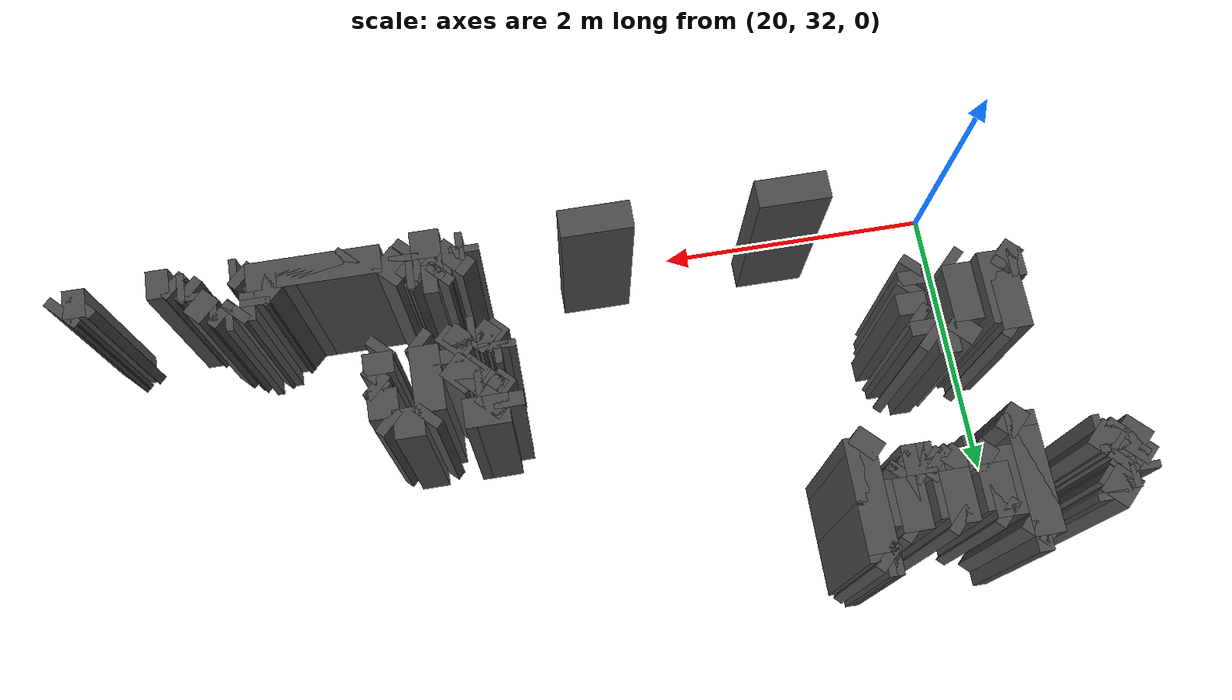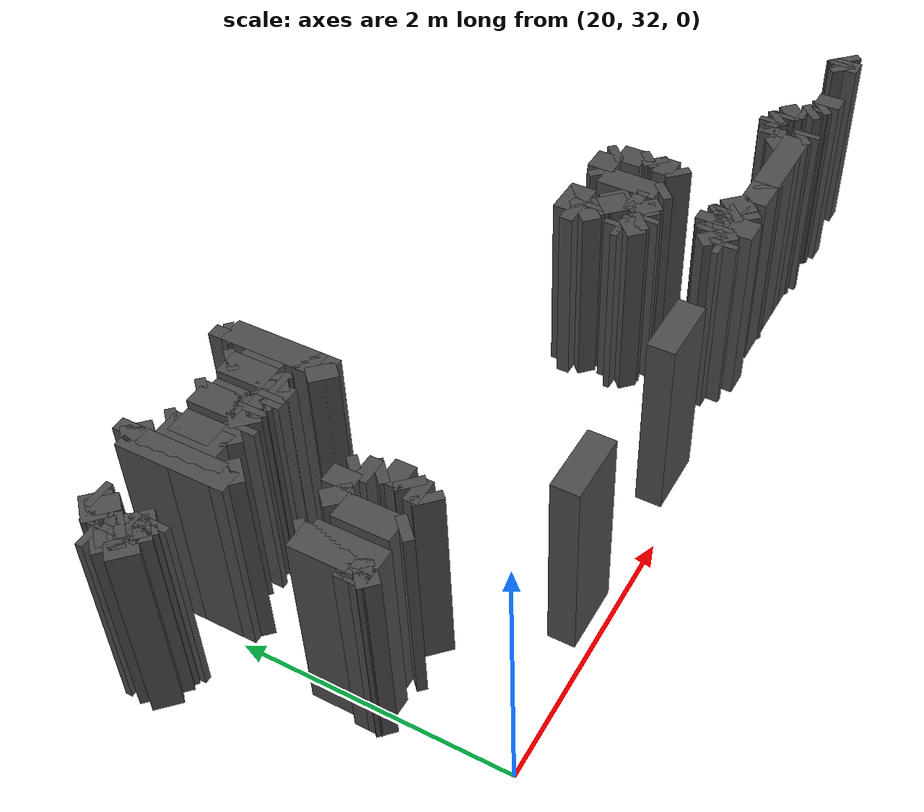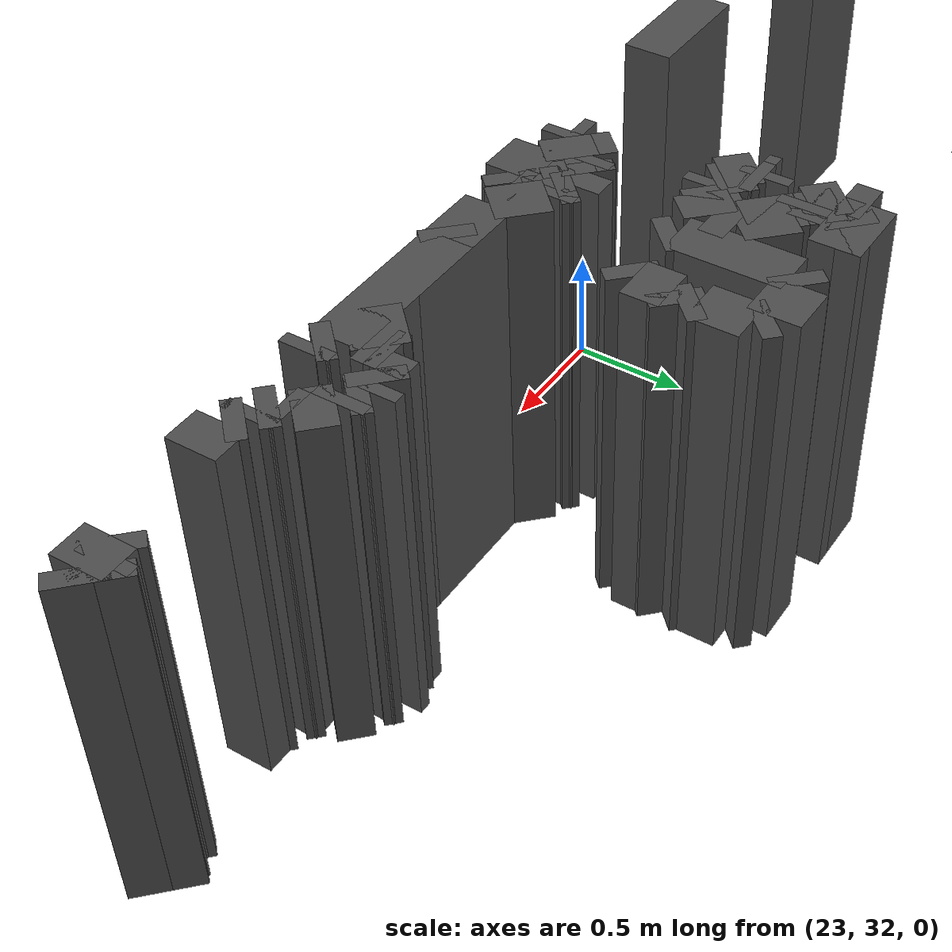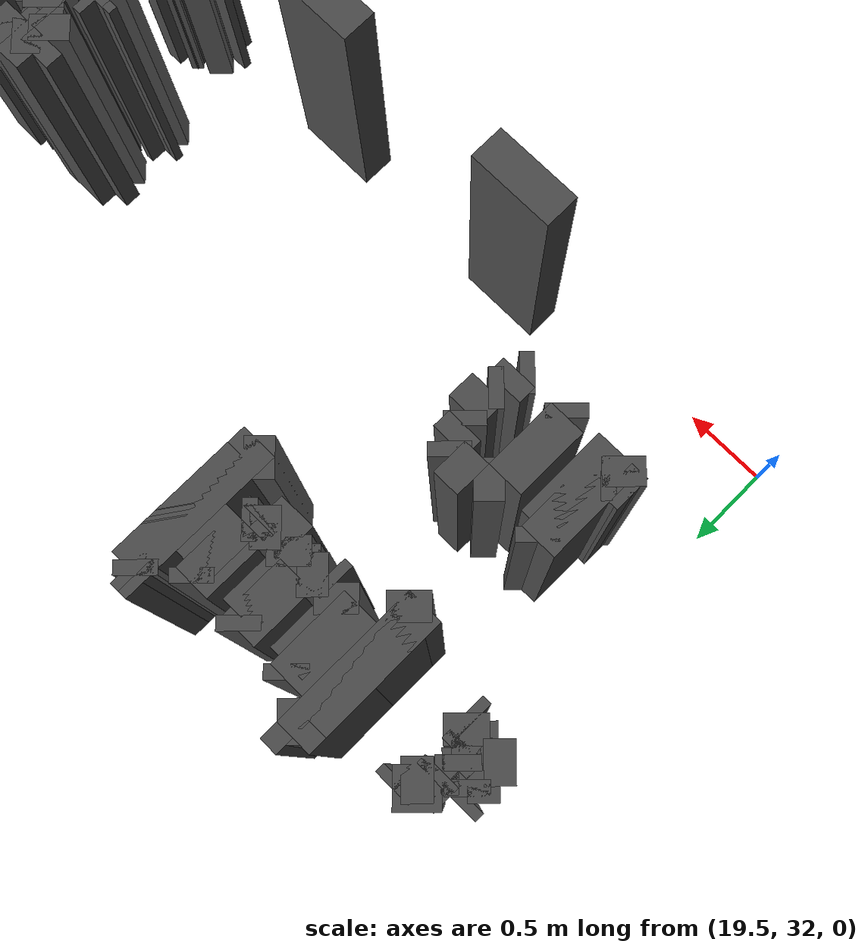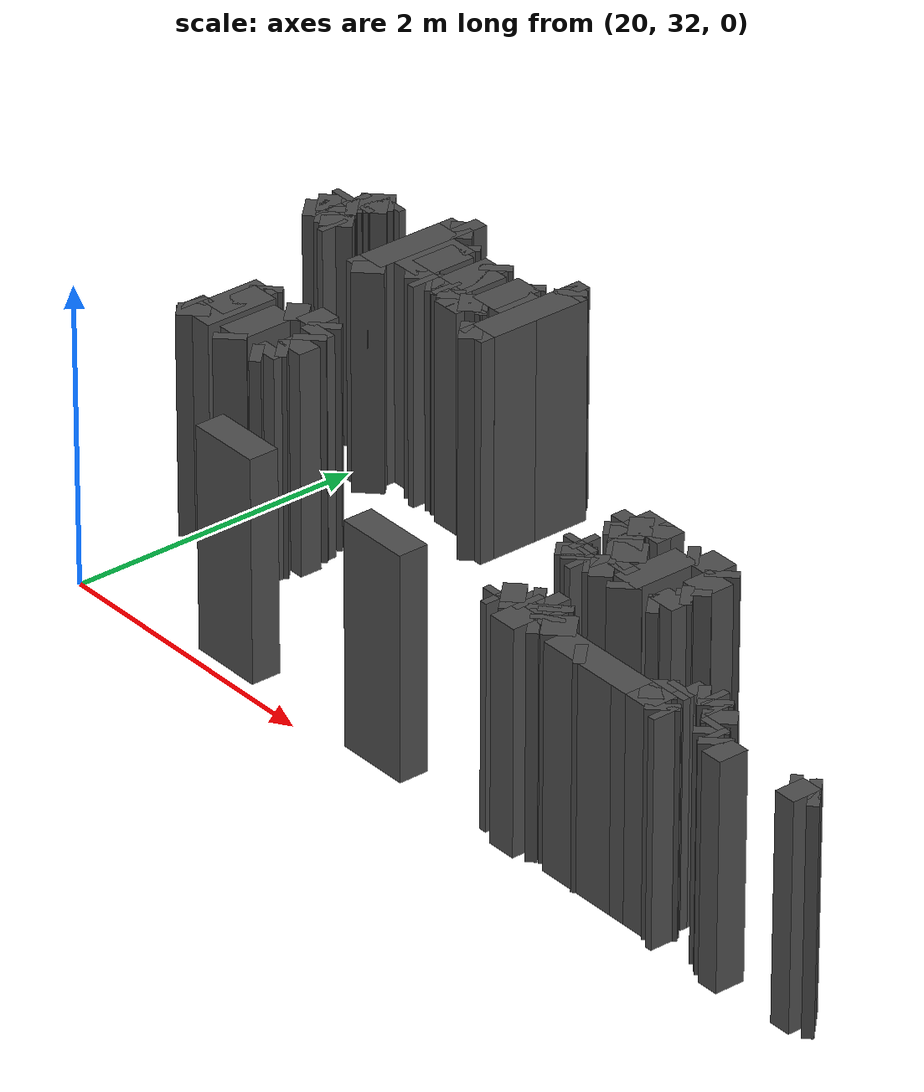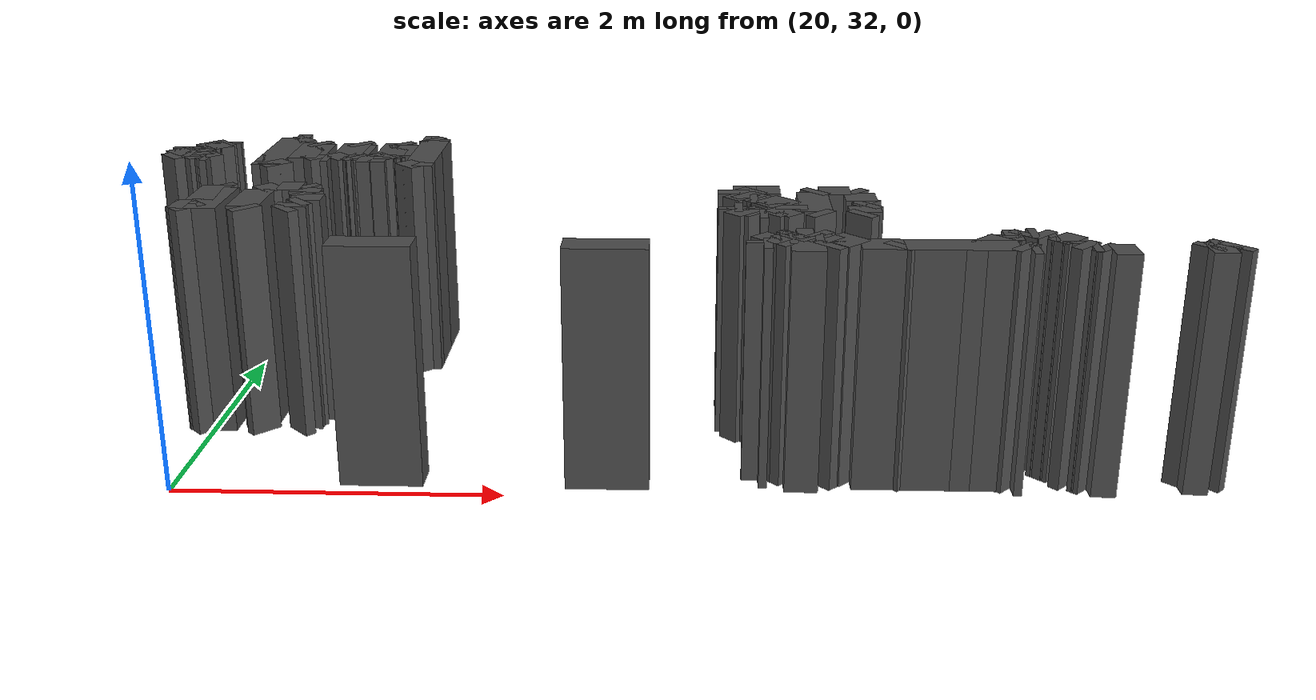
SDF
<sdf version="1.9">
 <model name="generated_walls">
  <static>true</static>
  <link name="wall_0_0">
   <pose>20.350 34.375 0.75 0 0 1.571</pose>
   <collision name="collision"><geometry><box><size>0.450 0.2 1.5</size></box></geometry></collision>
   <visual name="visual">
    <geometry><box><size>0.450 0.2 1.5</size></box></geometry>
    <material><ambient>0.3 0.3 0.3 1</ambient></material>
   </visual>
  </link>
  <link name="wall_0_1">
   <pose>20.375 34.575 0.75 0 0 -0.785</pose>
   <collision name="collision"><geometry><box><size>0.071 0.2 1.5</size></box></geometry></collision>
   <visual name="visual">
    <geometry><box><size>0.071 0.2 1.5</size></box></geometry>
    <material><ambient>0.3 0.3 0.3 1</ambient></material>
   </visual>
  </link>
  <link name="wall_0_2">
   <pose>20.400 34.400 0.75 0 0 -1.571</pose>
   <collision name="collision"><geometry><box><size>0.300 0.2 1.5</size></box></geometry></collision>
   <visual name="visual">
    <geometry><box><size>0.300 0.2 1.5</size></box></geometry>
    <material><ambient>0.3 0.3 0.3 1</ambient></material>
   </visual>
  </link>
  <link name="wall_0_3">
   <pose>20.450 34.200 0.75 0 0 -0.785</pose>
   <collision name="collision"><geometry><box><size>0.141 0.2 1.5</size></box></geometry></collision>
   <visual name="visual">
    <geometry><box><size>0.141 0.2 1.5</size></box></geometry>
    <material><ambient>0.3 0.3 0.3 1</ambient></material>
   </visual>
  </link>
  <link name="wall_0_4">
   <pose>20.525 34.150 0.75 0 0 0.000</pose>
   <collision name="collision"><geometry><box><size>0.050 0.2 1.5</size></box></geometry></collision>
   <visual name="visual">
    <geometry><box><size>0.050 0.2 1.5</size></box></geometry>
    <material><ambient>0.3 0.3 0.3 1</ambient></material>
   </visual>
  </link>
  <link name="wall_0_5">
   <pose>20.600 34.200 0.75 0 0 0.785</pose>
   <collision name="collision"><geometry><box><size>0.141 0.2 1.5</size></box></geometry></collision>
   <visual name="visual">
    <geometry><box><size>0.141 0.2 1.5</size></box></geometry>
    <material><ambient>0.3 0.3 0.3 1</ambient></material>
   </visual>
  </link>
  <link name="wall_0_6">
   <pose>20.650 34.425 0.75 0 0 1.571</pose>
   <collision name="collision"><geometry><box><size>0.350 0.2 1.5</size></box></geometry></collision>
   <visual name="visual">
    <geometry><box><size>0.350 0.2 1.5</size></box></geometry>
    <material><ambient>0.3 0.3 0.3 1</ambient></material>
   </visual>
  </link>
  <link name="wall_0_7">
   <pose>20.675 34.575 0.75 0 0 -0.785</pose>
   <collision name="collision"><geometry><box><size>0.071 0.2 1.5</size></box></geometry></collision>
   <visual name="visual">
    <geometry><box><size>0.071 0.2 1.5</size></box></geometry>
    <material><ambient>0.3 0.3 0.3 1</ambient></material>
   </visual>
  </link>
  <link name="wall_0_8">
   <pose>20.700 34.400 0.75 0 0 -1.571</pose>
   <collision name="collision"><geometry><box><size>0.300 0.2 1.5</size></box></geometry></collision>
   <visual name="visual">
    <geometry><box><size>0.300 0.2 1.5</size></box></geometry>
    <material><ambient>0.3 0.3 0.3 1</ambient></material>
   </visual>
  </link>
  <link name="wall_0_9">
   <pose>20.750 34.200 0.75 0 0 -0.785</pose>
   <collision name="collision"><geometry><box><size>0.141 0.2 1.5</size></box></geometry></collision>
   <visual name="visual">
    <geometry><box><size>0.141 0.2 1.5</size></box></geometry>
    <material><ambient>0.3 0.3 0.3 1</ambient></material>
   </visual>
  </link>
  <link name="wall_0_10">
   <pose>20.825 34.150 0.75 0 0 0.000</pose>
   <collision name="collision"><geometry><box><size>0.050 0.2 1.5</size></box></geometry></collision>
   <visual name="visual">
    <geometry><box><size>0.050 0.2 1.5</size></box></geometry>
    <material><ambient>0.3 0.3 0.3 1</ambient></material>
   </visual>
  </link>
  <link name="wall_0_11">
   <pose>20.900 34.200 0.75 0 0 0.785</pose>
   <collision name="collision"><geometry><box><size>0.141 0.2 1.5</size></box></geometry></collision>
   <visual name="visual">
    <geometry><box><size>0.141 0.2 1.5</size></box></geometry>
    <material><ambient>0.3 0.3 0.3 1</ambient></material>
   </visual>
  </link>
  <link name="wall_0_12">
   <pose>20.950 34.425 0.75 0 0 1.571</pose>
   <collision name="collision"><geometry><box><size>0.350 0.2 1.5</size></box></geometry></collision>
   <visual name="visual">
    <geometry><box><size>0.350 0.2 1.5</size></box></geometry>
    <material><ambient>0.3 0.3 0.3 1</ambient></material>
   </visual>
  </link>
  <link name="wall_0_13">
   <pose>20.975 34.575 0.75 0 0 -0.785</pose>
   <collision name="collision"><geometry><box><size>0.071 0.2 1.5</size></box></geometry></collision>
   <visual name="visual">
    <geometry><box><size>0.071 0.2 1.5</size></box></geometry>
    <material><ambient>0.3 0.3 0.3 1</ambient></material>
   </visual>
  </link>
  <link name="wall_0_14">
   <pose>21.000 34.400 0.75 0 0 -1.571</pose>
   <collision name="collision"><geometry><box><size>0.300 0.2 1.5</size></box></geometry></collision>
   <visual name="visual">
    <geometry><box><size>0.300 0.2 1.5</size></box></geometry>
    <material><ambient>0.3 0.3 0.3 1</ambient></material>
   </visual>
  </link>
  <link name="wall_0_15">
   <pose>20.975 34.225 0.75 0 0 -2.356</pose>
   <collision name="collision"><geometry><box><size>0.071 0.2 1.5</size></box></geometry></collision>
   <visual name="visual">
    <geometry><box><size>0.071 0.2 1.5</size></box></geometry>
    <material><ambient>0.3 0.3 0.3 1</ambient></material>
   </visual>
  </link>
  <link name="wall_0_16">
   <pose>20.950 34.175 0.75 0 0 -1.571</pose>
   <collision name="collision"><geometry><box><size>0.050 0.2 1.5</size></box></geometry></collision>
   <visual name="visual">
    <geometry><box><size>0.050 0.2 1.5</size></box></geometry>
    <material><ambient>0.3 0.3 0.3 1</ambient></material>
   </visual>
  </link>
  <link name="wall_0_17">
   <pose>20.850 34.150 0.75 0 0 3.142</pose>
   <collision name="collision"><geometry><box><size>0.200 0.2 1.5</size></box></geometry></collision>
   <visual name="visual">
    <geometry><box><size>0.200 0.2 1.5</size></box></geometry>
    <material><ambient>0.3 0.3 0.3 1</ambient></material>
   </visual>
  </link>
  <link name="wall_0_18">
   <pose>20.725 34.175 0.75 0 0 2.356</pose>
   <collision name="collision"><geometry><box><size>0.071 0.2 1.5</size></box></geometry></collision>
   <visual name="visual">
    <geometry><box><size>0.071 0.2 1.5</size></box></geometry>
    <material><ambient>0.3 0.3 0.3 1</ambient></material>
   </visual>
  </link>
  <link name="wall_0_19">
   <pose>20.675 34.200 0.75 0 0 3.142</pose>
   <collision name="collision"><geometry><box><size>0.050 0.2 1.5</size></box></geometry></collision>
   <visual name="visual">
    <geometry><box><size>0.050 0.2 1.5</size></box></geometry>
    <material><ambient>0.3 0.3 0.3 1</ambient></material>
   </visual>
  </link>
  <link name="wall_0_20">
   <pose>20.625 34.175 0.75 0 0 -2.356</pose>
   <collision name="collision"><geometry><box><size>0.071 0.2 1.5</size></box></geometry></collision>
   <visual name="visual">
    <geometry><box><size>0.071 0.2 1.5</size></box></geometry>
    <material><ambient>0.3 0.3 0.3 1</ambient></material>
   </visual>
  </link>
  <link name="wall_1_2">
   <pose>19.450 34.300 0.75 0 0 0.785</pose>
   <collision name="collision"><geometry><box><size>0.141 0.2 1.5</size></box></geometry></collision>
   <visual name="visual">
    <geometry><box><size>0.141 0.2 1.5</size></box></geometry>
    <material><ambient>0.3 0.3 0.3 1</ambient></material>
   </visual>
  </link>
  <link name="wall_1_3">
   <pose>19.475 34.375 0.75 0 0 2.356</pose>
   <collision name="collision"><geometry><box><size>0.071 0.2 1.5</size></box></geometry></collision>
   <visual name="visual">
    <geometry><box><size>0.071 0.2 1.5</size></box></geometry>
    <material><ambient>0.3 0.3 0.3 1</ambient></material>
   </visual>
  </link>
  <link name="wall_1_4">
   <pose>19.450 34.425 0.75 0 0 1.571</pose>
   <collision name="collision"><geometry><box><size>0.050 0.2 1.5</size></box></geometry></collision>
   <visual name="visual">
    <geometry><box><size>0.050 0.2 1.5</size></box></geometry>
    <material><ambient>0.3 0.3 0.3 1</ambient></material>
   </visual>
  </link>
  <link name="wall_1_8">
   <pose>19.525 34.450 0.75 0 0 0.000</pose>
   <collision name="collision"><geometry><box><size>0.050 0.2 1.5</size></box></geometry></collision>
   <visual name="visual">
    <geometry><box><size>0.050 0.2 1.5</size></box></geometry>
    <material><ambient>0.3 0.3 0.3 1</ambient></material>
   </visual>
  </link>
  <link name="wall_1_9">
   <pose>19.625 34.525 0.75 0 0 0.785</pose>
   <collision name="collision"><geometry><box><size>0.212 0.2 1.5</size></box></geometry></collision>
   <visual name="visual">
    <geometry><box><size>0.212 0.2 1.5</size></box></geometry>
    <material><ambient>0.3 0.3 0.3 1</ambient></material>
   </visual>
  </link>
  <link name="wall_1_10">
   <pose>19.700 34.575 0.75 0 0 -1.571</pose>
   <collision name="collision"><geometry><box><size>0.050 0.2 1.5</size></box></geometry></collision>
   <visual name="visual">
    <geometry><box><size>0.050 0.2 1.5</size></box></geometry>
    <material><ambient>0.3 0.3 0.3 1</ambient></material>
   </visual>
  </link>
  <link name="wall_1_11">
   <pose>19.650 34.500 0.75 0 0 -2.356</pose>
   <collision name="collision"><geometry><box><size>0.141 0.2 1.5</size></box></geometry></collision>
   <visual name="visual">
    <geometry><box><size>0.141 0.2 1.5</size></box></geometry>
    <material><ambient>0.3 0.3 0.3 1</ambient></material>
   </visual>
  </link>
  <link name="wall_1_12">
   <pose>19.600 34.425 0.75 0 0 -1.571</pose>
   <collision name="collision"><geometry><box><size>0.050 0.2 1.5</size></box></geometry></collision>
   <visual name="visual">
    <geometry><box><size>0.050 0.2 1.5</size></box></geometry>
    <material><ambient>0.3 0.3 0.3 1</ambient></material>
   </visual>
  </link>
  <link name="wall_1_13">
   <pose>19.575 34.375 0.75 0 0 -2.356</pose>
   <collision name="collision"><geometry><box><size>0.071 0.2 1.5</size></box></geometry></collision>
   <visual name="visual">
    <geometry><box><size>0.071 0.2 1.5</size></box></geometry>
    <material><ambient>0.3 0.3 0.3 1</ambient></material>
   </visual>
  </link>
  <link name="wall_1_14">
   <pose>19.575 34.325 0.75 0 0 -0.785</pose>
   <collision name="collision"><geometry><box><size>0.071 0.2 1.5</size></box></geometry></collision>
   <visual name="visual">
    <geometry><box><size>0.071 0.2 1.5</size></box></geometry>
    <material><ambient>0.3 0.3 0.3 1</ambient></material>
   </visual>
  </link>
  <link name="wall_1_15">
   <pose>19.600 34.275 0.75 0 0 -1.571</pose>
   <collision name="collision"><geometry><box><size>0.050 0.2 1.5</size></box></geometry></collision>
   <visual name="visual">
    <geometry><box><size>0.050 0.2 1.5</size></box></geometry>
    <material><ambient>0.3 0.3 0.3 1</ambient></material>
   </visual>
  </link>
  <link name="wall_1_16">
   <pose>19.650 34.200 0.75 0 0 -0.785</pose>
   <collision name="collision"><geometry><box><size>0.141 0.2 1.5</size></box></geometry></collision>
   <visual name="visual">
    <geometry><box><size>0.141 0.2 1.5</size></box></geometry>
    <material><ambient>0.3 0.3 0.3 1</ambient></material>
   </visual>
  </link>
  <link name="wall_1_17">
   <pose>19.675 34.150 0.75 0 0 3.142</pose>
   <collision name="collision"><geometry><box><size>0.050 0.2 1.5</size></box></geometry></collision>
   <visual name="visual">
    <geometry><box><size>0.050 0.2 1.5</size></box></geometry>
    <material><ambient>0.3 0.3 0.3 1</ambient></material>
   </visual>
  </link>
  <link name="wall_1_18">
   <pose>19.600 34.200 0.75 0 0 2.356</pose>
   <collision name="collision"><geometry><box><size>0.141 0.2 1.5</size></box></geometry></collision>
   <visual name="visual">
    <geometry><box><size>0.141 0.2 1.5</size></box></geometry>
    <material><ambient>0.3 0.3 0.3 1</ambient></material>
   </visual>
  </link>
  <link name="wall_1_19">
   <pose>19.525 34.250 0.75 0 0 3.142</pose>
   <collision name="collision"><geometry><box><size>0.050 0.2 1.5</size></box></geometry></collision>
   <visual name="visual">
    <geometry><box><size>0.050 0.2 1.5</size></box></geometry>
    <material><ambient>0.3 0.3 0.3 1</ambient></material>
   </visual>
  </link>
  <link name="wall_1_20">
   <pose>19.450 34.200 0.75 0 0 -2.356</pose>
   <collision name="collision"><geometry><box><size>0.141 0.2 1.5</size></box></geometry></collision>
   <visual name="visual">
    <geometry><box><size>0.141 0.2 1.5</size></box></geometry>
    <material><ambient>0.3 0.3 0.3 1</ambient></material>
   </visual>
  </link>
  <link name="wall_2_0">
   <pose>21.150 34.000 0.75 0 0 0.785</pose>
   <collision name="collision"><geometry><box><size>0.141 0.2 1.5</size></box></geometry></collision>
   <visual name="visual">
    <geometry><box><size>0.141 0.2 1.5</size></box></geometry>
    <material><ambient>0.3 0.3 0.3 1</ambient></material>
   </visual>
  </link>
  <link name="wall_2_1">
   <pose>21.200 34.375 0.75 0 0 1.571</pose>
   <collision name="collision"><geometry><box><size>0.650 0.2 1.5</size></box></geometry></collision>
   <visual name="visual">
    <geometry><box><size>0.650 0.2 1.5</size></box></geometry>
    <material><ambient>0.3 0.3 0.3 1</ambient></material>
   </visual>
  </link>
  <link name="wall_2_2">
   <pose>21.175 34.725 0.75 0 0 2.356</pose>
   <collision name="collision"><geometry><box><size>0.071 0.2 1.5</size></box></geometry></collision>
   <visual name="visual">
    <geometry><box><size>0.071 0.2 1.5</size></box></geometry>
    <material><ambient>0.3 0.3 0.3 1</ambient></material>
   </visual>
  </link>
  <link name="wall_2_3">
   <pose>21.125 34.750 0.75 0 0 3.142</pose>
   <collision name="collision"><geometry><box><size>0.050 0.2 1.5</size></box></geometry></collision>
   <visual name="visual">
    <geometry><box><size>0.050 0.2 1.5</size></box></geometry>
    <material><ambient>0.3 0.3 0.3 1</ambient></material>
   </visual>
  </link>
  <link name="wall_2_4">
   <pose>21.150 34.750 0.75 0 0 0.000</pose>
   <collision name="collision"><geometry><box><size>0.100 0.2 1.5</size></box></geometry></collision>
   <visual name="visual">
    <geometry><box><size>0.100 0.2 1.5</size></box></geometry>
    <material><ambient>0.3 0.3 0.3 1</ambient></material>
   </visual>
  </link>
  <link name="wall_2_5">
   <pose>21.200 34.350 0.75 0 0 -1.571</pose>
   <collision name="collision"><geometry><box><size>0.800 0.2 1.5</size></box></geometry></collision>
   <visual name="visual">
    <geometry><box><size>0.800 0.2 1.5</size></box></geometry>
    <material><ambient>0.3 0.3 0.3 1</ambient></material>
   </visual>
  </link>
  <link name="wall_3_0">
   <pose>20.150 34.350 0.75 0 0 1.571</pose>
   <collision name="collision"><geometry><box><size>0.800 0.2 1.5</size></box></geometry></collision>
   <visual name="visual">
    <geometry><box><size>0.800 0.2 1.5</size></box></geometry>
    <material><ambient>0.3 0.3 0.3 1</ambient></material>
   </visual>
  </link>
  <link name="wall_3_1">
   <pose>20.200 34.750 0.75 0 0 0.000</pose>
   <collision name="collision"><geometry><box><size>0.100 0.2 1.5</size></box></geometry></collision>
   <visual name="visual">
    <geometry><box><size>0.100 0.2 1.5</size></box></geometry>
    <material><ambient>0.3 0.3 0.3 1</ambient></material>
   </visual>
  </link>
  <link name="wall_3_2">
   <pose>20.200 34.700 0.75 0 0 -2.356</pose>
   <collision name="collision"><geometry><box><size>0.141 0.2 1.5</size></box></geometry></collision>
   <visual name="visual">
    <geometry><box><size>0.141 0.2 1.5</size></box></geometry>
    <material><ambient>0.3 0.3 0.3 1</ambient></material>
   </visual>
  </link>
  <link name="wall_3_3">
   <pose>20.150 34.350 0.75 0 0 -1.571</pose>
   <collision name="collision"><geometry><box><size>0.600 0.2 1.5</size></box></geometry></collision>
   <visual name="visual">
    <geometry><box><size>0.600 0.2 1.5</size></box></geometry>
    <material><ambient>0.3 0.3 0.3 1</ambient></material>
   </visual>
  </link>
  <link name="wall_3_4">
   <pose>20.200 34.000 0.75 0 0 -0.785</pose>
   <collision name="collision"><geometry><box><size>0.141 0.2 1.5</size></box></geometry></collision>
   <visual name="visual">
    <geometry><box><size>0.141 0.2 1.5</size></box></geometry>
    <material><ambient>0.3 0.3 0.3 1</ambient></material>
   </visual>
  </link>
  <link name="wall_13_0">
   <pose>23.875 32.875 0.75 0 0 2.356</pose>
   <collision name="collision"><geometry><box><size>0.071 0.2 1.5</size></box></geometry></collision>
   <visual name="visual">
    <geometry><box><size>0.071 0.2 1.5</size></box></geometry>
    <material><ambient>0.3 0.3 0.3 1</ambient></material>
   </visual>
  </link>
  <link name="wall_13_1">
   <pose>23.850 33.125 0.75 0 0 1.571</pose>
   <collision name="collision"><geometry><box><size>0.450 0.2 1.5</size></box></geometry></collision>
   <visual name="visual">
    <geometry><box><size>0.450 0.2 1.5</size></box></geometry>
    <material><ambient>0.3 0.3 0.3 1</ambient></material>
   </visual>
  </link>
  <link name="wall_13_2">
   <pose>23.875 33.375 0.75 0 0 0.785</pose>
   <collision name="collision"><geometry><box><size>0.071 0.2 1.5</size></box></geometry></collision>
   <visual name="visual">
    <geometry><box><size>0.071 0.2 1.5</size></box></geometry>
    <material><ambient>0.3 0.3 0.3 1</ambient></material>
   </visual>
  </link>
  <link name="wall_13_3">
   <pose>24.000 33.400 0.75 0 0 0.000</pose>
   <collision name="collision"><geometry><box><size>0.200 0.2 1.5</size></box></geometry></collision>
   <visual name="visual">
    <geometry><box><size>0.200 0.2 1.5</size></box></geometry>
    <material><ambient>0.3 0.3 0.3 1</ambient></material>
   </visual>
  </link>
  <link name="wall_13_4">
   <pose>24.125 33.375 0.75 0 0 -0.785</pose>
   <collision name="collision"><geometry><box><size>0.071 0.2 1.5</size></box></geometry></collision>
   <visual name="visual">
    <geometry><box><size>0.071 0.2 1.5</size></box></geometry>
    <material><ambient>0.3 0.3 0.3 1</ambient></material>
   </visual>
  </link>
  <link name="wall_13_5">
   <pose>24.150 33.250 0.75 0 0 -1.571</pose>
   <collision name="collision"><geometry><box><size>0.200 0.2 1.5</size></box></geometry></collision>
   <visual name="visual">
    <geometry><box><size>0.200 0.2 1.5</size></box></geometry>
    <material><ambient>0.3 0.3 0.3 1</ambient></material>
   </visual>
  </link>
  <link name="wall_13_6">
   <pose>24.175 33.125 0.75 0 0 -0.785</pose>
   <collision name="collision"><geometry><box><size>0.071 0.2 1.5</size></box></geometry></collision>
   <visual name="visual">
    <geometry><box><size>0.071 0.2 1.5</size></box></geometry>
    <material><ambient>0.3 0.3 0.3 1</ambient></material>
   </visual>
  </link>
  <link name="wall_13_7">
   <pose>24.175 33.075 0.75 0 0 -2.356</pose>
   <collision name="collision"><geometry><box><size>0.071 0.2 1.5</size></box></geometry></collision>
   <visual name="visual">
    <geometry><box><size>0.071 0.2 1.5</size></box></geometry>
    <material><ambient>0.3 0.3 0.3 1</ambient></material>
   </visual>
  </link>
  <link name="wall_13_8">
   <pose>24.150 32.975 0.75 0 0 -1.571</pose>
   <collision name="collision"><geometry><box><size>0.150 0.2 1.5</size></box></geometry></collision>
   <visual name="visual">
    <geometry><box><size>0.150 0.2 1.5</size></box></geometry>
    <material><ambient>0.3 0.3 0.3 1</ambient></material>
   </visual>
  </link>
  <link name="wall_13_9">
   <pose>24.125 32.875 0.75 0 0 -2.356</pose>
   <collision name="collision"><geometry><box><size>0.071 0.2 1.5</size></box></geometry></collision>
   <visual name="visual">
    <geometry><box><size>0.071 0.2 1.5</size></box></geometry>
    <material><ambient>0.3 0.3 0.3 1</ambient></material>
   </visual>
  </link>
  <link name="wall_14_0">
   <pose>23.400 32.900 0.75 0 0 2.356</pose>
   <collision name="collision"><geometry><box><size>0.141 0.2 1.5</size></box></geometry></collision>
   <visual name="visual">
    <geometry><box><size>0.141 0.2 1.5</size></box></geometry>
    <material><ambient>0.3 0.3 0.3 1</ambient></material>
   </visual>
  </link>
  <link name="wall_14_1">
   <pose>23.350 32.975 0.75 0 0 1.571</pose>
   <collision name="collision"><geometry><box><size>0.050 0.2 1.5</size></box></geometry></collision>
   <visual name="visual">
    <geometry><box><size>0.050 0.2 1.5</size></box></geometry>
    <material><ambient>0.3 0.3 0.3 1</ambient></material>
   </visual>
  </link>
  <link name="wall_14_2">
   <pose>23.375 33.000 0.75 0 0 0.000</pose>
   <collision name="collision"><geometry><box><size>0.050 0.2 1.5</size></box></geometry></collision>
   <visual name="visual">
    <geometry><box><size>0.050 0.2 1.5</size></box></geometry>
    <material><ambient>0.3 0.3 0.3 1</ambient></material>
   </visual>
  </link>
  <link name="wall_14_3">
   <pose>23.400 32.975 0.75 0 0 -1.571</pose>
   <collision name="collision"><geometry><box><size>0.050 0.2 1.5</size></box></geometry></collision>
   <visual name="visual">
    <geometry><box><size>0.050 0.2 1.5</size></box></geometry>
    <material><ambient>0.3 0.3 0.3 1</ambient></material>
   </visual>
  </link>
  <link name="wall_14_4">
   <pose>23.450 32.900 0.75 0 0 -0.785</pose>
   <collision name="collision"><geometry><box><size>0.141 0.2 1.5</size></box></geometry></collision>
   <visual name="visual">
    <geometry><box><size>0.141 0.2 1.5</size></box></geometry>
    <material><ambient>0.3 0.3 0.3 1</ambient></material>
   </visual>
  </link>
  <link name="wall_14_5">
   <pose>23.525 32.850 0.75 0 0 0.000</pose>
   <collision name="collision"><geometry><box><size>0.050 0.2 1.5</size></box></geometry></collision>
   <visual name="visual">
    <geometry><box><size>0.050 0.2 1.5</size></box></geometry>
    <material><ambient>0.3 0.3 0.3 1</ambient></material>
   </visual>
  </link>
  <link name="wall_14_6">
   <pose>23.600 32.900 0.75 0 0 0.785</pose>
   <collision name="collision"><geometry><box><size>0.141 0.2 1.5</size></box></geometry></collision>
   <visual name="visual">
    <geometry><box><size>0.141 0.2 1.5</size></box></geometry>
    <material><ambient>0.3 0.3 0.3 1</ambient></material>
   </visual>
  </link>
  <link name="wall_14_7">
   <pose>23.650 33.000 0.75 0 0 1.571</pose>
   <collision name="collision"><geometry><box><size>0.100 0.2 1.5</size></box></geometry></collision>
   <visual name="visual">
    <geometry><box><size>0.100 0.2 1.5</size></box></geometry>
    <material><ambient>0.3 0.3 0.3 1</ambient></material>
   </visual>
  </link>
  <link name="wall_14_8">
   <pose>23.575 33.125 0.75 0 0 2.356</pose>
   <collision name="collision"><geometry><box><size>0.212 0.2 1.5</size></box></geometry></collision>
   <visual name="visual">
    <geometry><box><size>0.212 0.2 1.5</size></box></geometry>
    <material><ambient>0.3 0.3 0.3 1</ambient></material>
   </visual>
  </link>
  <link name="wall_14_9">
   <pose>23.475 33.200 0.75 0 0 3.142</pose>
   <collision name="collision"><geometry><box><size>0.050 0.2 1.5</size></box></geometry></collision>
   <visual name="visual">
    <geometry><box><size>0.050 0.2 1.5</size></box></geometry>
    <material><ambient>0.3 0.3 0.3 1</ambient></material>
   </visual>
  </link>
  <link name="wall_14_10">
   <pose>23.400 33.250 0.75 0 0 2.356</pose>
   <collision name="collision"><geometry><box><size>0.141 0.2 1.5</size></box></geometry></collision>
   <visual name="visual">
    <geometry><box><size>0.141 0.2 1.5</size></box></geometry>
    <material><ambient>0.3 0.3 0.3 1</ambient></material>
   </visual>
  </link>
  <link name="wall_14_11">
   <pose>23.350 33.350 0.75 0 0 1.571</pose>
   <collision name="collision"><geometry><box><size>0.100 0.2 1.5</size></box></geometry></collision>
   <visual name="visual">
    <geometry><box><size>0.100 0.2 1.5</size></box></geometry>
    <material><ambient>0.3 0.3 0.3 1</ambient></material>
   </visual>
  </link>
  <link name="wall_14_12">
   <pose>23.500 33.400 0.75 0 0 0.000</pose>
   <collision name="collision"><geometry><box><size>0.300 0.2 1.5</size></box></geometry></collision>
   <visual name="visual">
    <geometry><box><size>0.300 0.2 1.5</size></box></geometry>
    <material><ambient>0.3 0.3 0.3 1</ambient></material>
   </visual>
  </link>
  <link name="wall_14_13">
   <pose>23.575 33.400 0.75 0 0 3.142</pose>
   <collision name="collision"><geometry><box><size>0.150 0.2 1.5</size></box></geometry></collision>
   <visual name="visual">
    <geometry><box><size>0.150 0.2 1.5</size></box></geometry>
    <material><ambient>0.3 0.3 0.3 1</ambient></material>
   </visual>
  </link>
  <link name="wall_14_14">
   <pose>23.450 33.350 0.75 0 0 -2.356</pose>
   <collision name="collision"><geometry><box><size>0.141 0.2 1.5</size></box></geometry></collision>
   <visual name="visual">
    <geometry><box><size>0.141 0.2 1.5</size></box></geometry>
    <material><ambient>0.3 0.3 0.3 1</ambient></material>
   </visual>
  </link>
  <link name="wall_14_15">
   <pose>23.450 33.250 0.75 0 0 -0.785</pose>
   <collision name="collision"><geometry><box><size>0.141 0.2 1.5</size></box></geometry></collision>
   <visual name="visual">
    <geometry><box><size>0.141 0.2 1.5</size></box></geometry>
    <material><ambient>0.3 0.3 0.3 1</ambient></material>
   </visual>
  </link>
  <link name="wall_14_16">
   <pose>23.525 33.200 0.75 0 0 0.000</pose>
   <collision name="collision"><geometry><box><size>0.050 0.2 1.5</size></box></geometry></collision>
   <visual name="visual">
    <geometry><box><size>0.050 0.2 1.5</size></box></geometry>
    <material><ambient>0.3 0.3 0.3 1</ambient></material>
   </visual>
  </link>
  <link name="wall_14_17">
   <pose>23.625 33.125 0.75 0 0 -0.785</pose>
   <collision name="collision"><geometry><box><size>0.212 0.2 1.5</size></box></geometry></collision>
   <visual name="visual">
    <geometry><box><size>0.212 0.2 1.5</size></box></geometry>
    <material><ambient>0.3 0.3 0.3 1</ambient></material>
   </visual>
  </link>
  <link name="wall_14_18">
   <pose>23.700 33.000 0.75 0 0 -1.571</pose>
   <collision name="collision"><geometry><box><size>0.100 0.2 1.5</size></box></geometry></collision>
   <visual name="visual">
    <geometry><box><size>0.100 0.2 1.5</size></box></geometry>
    <material><ambient>0.3 0.3 0.3 1</ambient></material>
   </visual>
  </link>
  <link name="wall_14_19">
   <pose>23.650 32.900 0.75 0 0 -2.356</pose>
   <collision name="collision"><geometry><box><size>0.141 0.2 1.5</size></box></geometry></collision>
   <visual name="visual">
    <geometry><box><size>0.141 0.2 1.5</size></box></geometry>
    <material><ambient>0.3 0.3 0.3 1</ambient></material>
   </visual>
  </link>
  <link name="wall_15_0">
   <pose>20.325 32.875 0.75 0 0 2.356</pose>
   <collision name="collision"><geometry><box><size>0.071 0.2 1.5</size></box></geometry></collision>
   <visual name="visual">
    <geometry><box><size>0.071 0.2 1.5</size></box></geometry>
    <material><ambient>0.3 0.3 0.3 1</ambient></material>
   </visual>
  </link>
  <link name="wall_15_1">
   <pose>20.300 33.100 0.75 0 0 1.571</pose>
   <collision name="collision"><geometry><box><size>0.400 0.2 1.5</size></box></geometry></collision>
   <visual name="visual">
    <geometry><box><size>0.400 0.2 1.5</size></box></geometry>
    <material><ambient>0.3 0.3 0.3 1</ambient></material>
   </visual>
  </link>
  <link name="wall_15_2">
   <pose>20.350 33.350 0.75 0 0 0.785</pose>
   <collision name="collision"><geometry><box><size>0.141 0.2 1.5</size></box></geometry></collision>
   <visual name="visual">
    <geometry><box><size>0.141 0.2 1.5</size></box></geometry>
    <material><ambient>0.3 0.3 0.3 1</ambient></material>
   </visual>
  </link>
  <link name="wall_15_3">
   <pose>20.475 33.400 0.75 0 0 0.000</pose>
   <collision name="collision"><geometry><box><size>0.150 0.2 1.5</size></box></geometry></collision>
   <visual name="visual">
    <geometry><box><size>0.150 0.2 1.5</size></box></geometry>
    <material><ambient>0.3 0.3 0.3 1</ambient></material>
   </visual>
  </link>
  <link name="wall_15_4">
   <pose>20.575 33.375 0.75 0 0 -0.785</pose>
   <collision name="collision"><geometry><box><size>0.071 0.2 1.5</size></box></geometry></collision>
   <visual name="visual">
    <geometry><box><size>0.071 0.2 1.5</size></box></geometry>
    <material><ambient>0.3 0.3 0.3 1</ambient></material>
   </visual>
  </link>
  <link name="wall_15_5">
   <pose>20.600 33.300 0.75 0 0 -1.571</pose>
   <collision name="collision"><geometry><box><size>0.100 0.2 1.5</size></box></geometry></collision>
   <visual name="visual">
    <geometry><box><size>0.100 0.2 1.5</size></box></geometry>
    <material><ambient>0.3 0.3 0.3 1</ambient></material>
   </visual>
  </link>
  <link name="wall_15_6">
   <pose>20.625 33.225 0.75 0 0 -0.785</pose>
   <collision name="collision"><geometry><box><size>0.071 0.2 1.5</size></box></geometry></collision>
   <visual name="visual">
    <geometry><box><size>0.071 0.2 1.5</size></box></geometry>
    <material><ambient>0.3 0.3 0.3 1</ambient></material>
   </visual>
  </link>
  <link name="wall_15_7">
   <pose>20.650 33.125 0.75 0 0 -1.571</pose>
   <collision name="collision"><geometry><box><size>0.150 0.2 1.5</size></box></geometry></collision>
   <visual name="visual">
    <geometry><box><size>0.150 0.2 1.5</size></box></geometry>
    <material><ambient>0.3 0.3 0.3 1</ambient></material>
   </visual>
  </link>
  <link name="wall_15_8">
   <pose>20.625 33.025 0.75 0 0 -2.356</pose>
   <collision name="collision"><geometry><box><size>0.071 0.2 1.5</size></box></geometry></collision>
   <visual name="visual">
    <geometry><box><size>0.071 0.2 1.5</size></box></geometry>
    <material><ambient>0.3 0.3 0.3 1</ambient></material>
   </visual>
  </link>
  <link name="wall_15_9">
   <pose>20.600 32.950 0.75 0 0 -1.571</pose>
   <collision name="collision"><geometry><box><size>0.100 0.2 1.5</size></box></geometry></collision>
   <visual name="visual">
    <geometry><box><size>0.100 0.2 1.5</size></box></geometry>
    <material><ambient>0.3 0.3 0.3 1</ambient></material>
   </visual>
  </link>
  <link name="wall_15_10">
   <pose>20.575 32.875 0.75 0 0 -2.356</pose>
   <collision name="collision"><geometry><box><size>0.071 0.2 1.5</size></box></geometry></collision>
   <visual name="visual">
    <geometry><box><size>0.071 0.2 1.5</size></box></geometry>
    <material><ambient>0.3 0.3 0.3 1</ambient></material>
   </visual>
  </link>
  <link name="wall_16_0">
   <pose>19.950 32.900 0.75 0 0 2.356</pose>
   <collision name="collision"><geometry><box><size>0.141 0.2 1.5</size></box></geometry></collision>
   <visual name="visual">
    <geometry><box><size>0.141 0.2 1.5</size></box></geometry>
    <material><ambient>0.3 0.3 0.3 1</ambient></material>
   </visual>
  </link>
  <link name="wall_16_1">
   <pose>19.875 32.950 0.75 0 0 3.142</pose>
   <collision name="collision"><geometry><box><size>0.050 0.2 1.5</size></box></geometry></collision>
   <visual name="visual">
    <geometry><box><size>0.050 0.2 1.5</size></box></geometry>
    <material><ambient>0.3 0.3 0.3 1</ambient></material>
   </visual>
  </link>
  <link name="wall_16_2">
   <pose>19.900 32.950 0.75 0 0 0.000</pose>
   <collision name="collision"><geometry><box><size>0.100 0.2 1.5</size></box></geometry></collision>
   <visual name="visual">
    <geometry><box><size>0.100 0.2 1.5</size></box></geometry>
    <material><ambient>0.3 0.3 0.3 1</ambient></material>
   </visual>
  </link>
  <link name="wall_16_3">
   <pose>19.975 32.975 0.75 0 0 0.785</pose>
   <collision name="collision"><geometry><box><size>0.071 0.2 1.5</size></box></geometry></collision>
   <visual name="visual">
    <geometry><box><size>0.071 0.2 1.5</size></box></geometry>
    <material><ambient>0.3 0.3 0.3 1</ambient></material>
   </visual>
  </link>
  <link name="wall_16_4">
   <pose>20.000 33.200 0.75 0 0 1.571</pose>
   <collision name="collision"><geometry><box><size>0.400 0.2 1.5</size></box></geometry></collision>
   <visual name="visual">
    <geometry><box><size>0.400 0.2 1.5</size></box></geometry>
    <material><ambient>0.3 0.3 0.3 1</ambient></material>
   </visual>
  </link>
  <link name="wall_16_5">
   <pose>20.025 33.375 0.75 0 0 -0.785</pose>
   <collision name="collision"><geometry><box><size>0.071 0.2 1.5</size></box></geometry></collision>
   <visual name="visual">
    <geometry><box><size>0.071 0.2 1.5</size></box></geometry>
    <material><ambient>0.3 0.3 0.3 1</ambient></material>
   </visual>
  </link>
  <link name="wall_16_6">
   <pose>20.050 33.100 0.75 0 0 -1.571</pose>
   <collision name="collision"><geometry><box><size>0.500 0.2 1.5</size></box></geometry></collision>
   <visual name="visual">
    <geometry><box><size>0.500 0.2 1.5</size></box></geometry>
    <material><ambient>0.3 0.3 0.3 1</ambient></material>
   </visual>
  </link>
  <link name="wall_24_0">
   <pose>22.600 32.200 0.75 0 0 0.000</pose>
   <collision name="collision"><geometry><box><size>0.500 0.2 1.5</size></box></geometry></collision>
   <visual name="visual">
    <geometry><box><size>0.500 0.2 1.5</size></box></geometry>
    <material><ambient>0.3 0.3 0.3 1</ambient></material>
   </visual>
  </link>
  <link name="wall_25_0">
   <pose>21.250 32.200 0.75 0 0 0.000</pose>
   <collision name="collision"><geometry><box><size>0.500 0.2 1.5</size></box></geometry></collision>
   <visual name="visual">
    <geometry><box><size>0.500 0.2 1.5</size></box></geometry>
    <material><ambient>0.3 0.3 0.3 1</ambient></material>
   </visual>
  </link>
  <link name="wall_27_13">
   <pose>25.025 32.200 0.75 0 0 3.142</pose>
   <collision name="collision"><geometry><box><size>0.050 0.2 1.5</size></box></geometry></collision>
   <visual name="visual">
    <geometry><box><size>0.050 0.2 1.5</size></box></geometry>
    <material><ambient>0.3 0.3 0.3 1</ambient></material>
   </visual>
  </link>
  <link name="wall_27_14">
   <pose>24.975 32.225 0.75 0 0 2.356</pose>
   <collision name="collision"><geometry><box><size>0.071 0.2 1.5</size></box></geometry></collision>
   <visual name="visual">
    <geometry><box><size>0.071 0.2 1.5</size></box></geometry>
    <material><ambient>0.3 0.3 0.3 1</ambient></material>
   </visual>
  </link>
  <link name="wall_27_15">
   <pose>24.625 32.250 0.75 0 0 3.142</pose>
   <collision name="collision"><geometry><box><size>0.650 0.2 1.5</size></box></geometry></collision>
   <visual name="visual">
    <geometry><box><size>0.650 0.2 1.5</size></box></geometry>
    <material><ambient>0.3 0.3 0.3 1</ambient></material>
   </visual>
  </link>
  <link name="wall_27_16">
   <pose>24.275 32.225 0.75 0 0 -2.356</pose>
   <collision name="collision"><geometry><box><size>0.071 0.2 1.5</size></box></geometry></collision>
   <visual name="visual">
    <geometry><box><size>0.071 0.2 1.5</size></box></geometry>
    <material><ambient>0.3 0.3 0.3 1</ambient></material>
   </visual>
  </link>
  <link name="wall_27_20">
   <pose>23.750 32.200 0.75 0 0 0.000</pose>
   <collision name="collision"><geometry><box><size>0.200 0.2 1.5</size></box></geometry></collision>
   <visual name="visual">
    <geometry><box><size>0.200 0.2 1.5</size></box></geometry>
    <material><ambient>0.3 0.3 0.3 1</ambient></material>
   </visual>
  </link>
  <link name="wall_27_21">
   <pose>23.875 32.225 0.75 0 0 0.785</pose>
   <collision name="collision"><geometry><box><size>0.071 0.2 1.5</size></box></geometry></collision>
   <visual name="visual">
    <geometry><box><size>0.071 0.2 1.5</size></box></geometry>
    <material><ambient>0.3 0.3 0.3 1</ambient></material>
   </visual>
  </link>
  <link name="wall_27_22">
   <pose>23.900 32.275 0.75 0 0 1.571</pose>
   <collision name="collision"><geometry><box><size>0.050 0.2 1.5</size></box></geometry></collision>
   <visual name="visual">
    <geometry><box><size>0.050 0.2 1.5</size></box></geometry>
    <material><ambient>0.3 0.3 0.3 1</ambient></material>
   </visual>
  </link>
  <link name="wall_27_23">
   <pose>23.875 32.325 0.75 0 0 2.356</pose>
   <collision name="collision"><geometry><box><size>0.071 0.2 1.5</size></box></geometry></collision>
   <visual name="visual">
    <geometry><box><size>0.071 0.2 1.5</size></box></geometry>
    <material><ambient>0.3 0.3 0.3 1</ambient></material>
   </visual>
  </link>
  <link name="wall_27_24">
   <pose>23.825 32.350 0.75 0 0 3.142</pose>
   <collision name="collision"><geometry><box><size>0.050 0.2 1.5</size></box></geometry></collision>
   <visual name="visual">
    <geometry><box><size>0.050 0.2 1.5</size></box></geometry>
    <material><ambient>0.3 0.3 0.3 1</ambient></material>
   </visual>
  </link>
  <link name="wall_27_25">
   <pose>23.775 32.375 0.75 0 0 2.356</pose>
   <collision name="collision"><geometry><box><size>0.071 0.2 1.5</size></box></geometry></collision>
   <visual name="visual">
    <geometry><box><size>0.071 0.2 1.5</size></box></geometry>
    <material><ambient>0.3 0.3 0.3 1</ambient></material>
   </visual>
  </link>
  <link name="wall_27_26">
   <pose>23.725 32.375 0.75 0 0 -2.356</pose>
   <collision name="collision"><geometry><box><size>0.071 0.2 1.5</size></box></geometry></collision>
   <visual name="visual">
    <geometry><box><size>0.071 0.2 1.5</size></box></geometry>
    <material><ambient>0.3 0.3 0.3 1</ambient></material>
   </visual>
  </link>
  <link name="wall_27_27">
   <pose>23.675 32.350 0.75 0 0 3.142</pose>
   <collision name="collision"><geometry><box><size>0.050 0.2 1.5</size></box></geometry></collision>
   <visual name="visual">
    <geometry><box><size>0.050 0.2 1.5</size></box></geometry>
    <material><ambient>0.3 0.3 0.3 1</ambient></material>
   </visual>
  </link>
  <link name="wall_27_28">
   <pose>23.600 32.300 0.75 0 0 -2.356</pose>
   <collision name="collision"><geometry><box><size>0.141 0.2 1.5</size></box></geometry></collision>
   <visual name="visual">
    <geometry><box><size>0.141 0.2 1.5</size></box></geometry>
    <material><ambient>0.3 0.3 0.3 1</ambient></material>
   </visual>
  </link>
  <link name="wall_27_29">
   <pose>23.525 32.250 0.75 0 0 3.142</pose>
   <collision name="collision"><geometry><box><size>0.050 0.2 1.5</size></box></geometry></collision>
   <visual name="visual">
    <geometry><box><size>0.050 0.2 1.5</size></box></geometry>
    <material><ambient>0.3 0.3 0.3 1</ambient></material>
   </visual>
  </link>
  <link name="wall_27_30">
   <pose>23.500 32.275 0.75 0 0 1.571</pose>
   <collision name="collision"><geometry><box><size>0.050 0.2 1.5</size></box></geometry></collision>
   <visual name="visual">
    <geometry><box><size>0.050 0.2 1.5</size></box></geometry>
    <material><ambient>0.3 0.3 0.3 1</ambient></material>
   </visual>
  </link>
  <link name="wall_27_31">
   <pose>23.550 32.350 0.75 0 0 0.785</pose>
   <collision name="collision"><geometry><box><size>0.141 0.2 1.5</size></box></geometry></collision>
   <visual name="visual">
    <geometry><box><size>0.141 0.2 1.5</size></box></geometry>
    <material><ambient>0.3 0.3 0.3 1</ambient></material>
   </visual>
  </link>
  <link name="wall_27_32">
   <pose>23.625 32.400 0.75 0 0 0.000</pose>
   <collision name="collision"><geometry><box><size>0.050 0.2 1.5</size></box></geometry></collision>
   <visual name="visual">
    <geometry><box><size>0.050 0.2 1.5</size></box></geometry>
    <material><ambient>0.3 0.3 0.3 1</ambient></material>
   </visual>
  </link>
  <link name="wall_27_33">
   <pose>23.675 32.425 0.75 0 0 0.785</pose>
   <collision name="collision"><geometry><box><size>0.071 0.2 1.5</size></box></geometry></collision>
   <visual name="visual">
    <geometry><box><size>0.071 0.2 1.5</size></box></geometry>
    <material><ambient>0.3 0.3 0.3 1</ambient></material>
   </visual>
  </link>
  <link name="wall_27_34">
   <pose>23.750 32.450 0.75 0 0 0.000</pose>
   <collision name="collision"><geometry><box><size>0.100 0.2 1.5</size></box></geometry></collision>
   <visual name="visual">
    <geometry><box><size>0.100 0.2 1.5</size></box></geometry>
    <material><ambient>0.3 0.3 0.3 1</ambient></material>
   </visual>
  </link>
  <link name="wall_27_35">
   <pose>23.825 32.425 0.75 0 0 -0.785</pose>
   <collision name="collision"><geometry><box><size>0.071 0.2 1.5</size></box></geometry></collision>
   <visual name="visual">
    <geometry><box><size>0.071 0.2 1.5</size></box></geometry>
    <material><ambient>0.3 0.3 0.3 1</ambient></material>
   </visual>
  </link>
  <link name="wall_27_36">
   <pose>23.875 32.400 0.75 0 0 0.000</pose>
   <collision name="collision"><geometry><box><size>0.050 0.2 1.5</size></box></geometry></collision>
   <visual name="visual">
    <geometry><box><size>0.050 0.2 1.5</size></box></geometry>
    <material><ambient>0.3 0.3 0.3 1</ambient></material>
   </visual>
  </link>
  <link name="wall_27_37">
   <pose>23.975 32.325 0.75 0 0 -0.785</pose>
   <collision name="collision"><geometry><box><size>0.212 0.2 1.5</size></box></geometry></collision>
   <visual name="visual">
    <geometry><box><size>0.212 0.2 1.5</size></box></geometry>
    <material><ambient>0.3 0.3 0.3 1</ambient></material>
   </visual>
  </link>
  <link name="wall_27_38">
   <pose>24.400 32.250 0.75 0 0 0.000</pose>
   <collision name="collision"><geometry><box><size>0.700 0.2 1.5</size></box></geometry></collision>
   <visual name="visual">
    <geometry><box><size>0.700 0.2 1.5</size></box></geometry>
    <material><ambient>0.3 0.3 0.3 1</ambient></material>
   </visual>
  </link>
  <link name="wall_27_39">
   <pose>24.825 32.325 0.75 0 0 0.785</pose>
   <collision name="collision"><geometry><box><size>0.212 0.2 1.5</size></box></geometry></collision>
   <visual name="visual">
    <geometry><box><size>0.212 0.2 1.5</size></box></geometry>
    <material><ambient>0.3 0.3 0.3 1</ambient></material>
   </visual>
  </link>
  <link name="wall_27_40">
   <pose>24.900 32.425 0.75 0 0 1.571</pose>
   <collision name="collision"><geometry><box><size>0.050 0.2 1.5</size></box></geometry></collision>
   <visual name="visual">
    <geometry><box><size>0.050 0.2 1.5</size></box></geometry>
    <material><ambient>0.3 0.3 0.3 1</ambient></material>
   </visual>
  </link>
  <link name="wall_27_41">
   <pose>24.950 32.450 0.75 0 0 0.000</pose>
   <collision name="collision"><geometry><box><size>0.100 0.2 1.5</size></box></geometry></collision>
   <visual name="visual">
    <geometry><box><size>0.100 0.2 1.5</size></box></geometry>
    <material><ambient>0.3 0.3 0.3 1</ambient></material>
   </visual>
  </link>
  <link name="wall_27_42">
   <pose>25.025 32.475 0.75 0 0 0.785</pose>
   <collision name="collision"><geometry><box><size>0.071 0.2 1.5</size></box></geometry></collision>
   <visual name="visual">
    <geometry><box><size>0.071 0.2 1.5</size></box></geometry>
    <material><ambient>0.3 0.3 0.3 1</ambient></material>
   </visual>
  </link>
  <link name="wall_27_43">
   <pose>25.075 32.500 0.75 0 0 0.000</pose>
   <collision name="collision"><geometry><box><size>0.050 0.2 1.5</size></box></geometry></collision>
   <visual name="visual">
    <geometry><box><size>0.050 0.2 1.5</size></box></geometry>
    <material><ambient>0.3 0.3 0.3 1</ambient></material>
   </visual>
  </link>
  <link name="wall_27_44">
   <pose>25.125 32.475 0.75 0 0 -0.785</pose>
   <collision name="collision"><geometry><box><size>0.071 0.2 1.5</size></box></geometry></collision>
   <visual name="visual">
    <geometry><box><size>0.071 0.2 1.5</size></box></geometry>
    <material><ambient>0.3 0.3 0.3 1</ambient></material>
   </visual>
  </link>
  <link name="wall_27_45">
   <pose>25.175 32.450 0.75 0 0 0.000</pose>
   <collision name="collision"><geometry><box><size>0.050 0.2 1.5</size></box></geometry></collision>
   <visual name="visual">
    <geometry><box><size>0.050 0.2 1.5</size></box></geometry>
    <material><ambient>0.3 0.3 0.3 1</ambient></material>
   </visual>
  </link>
  <link name="wall_27_46">
   <pose>25.250 32.400 0.75 0 0 -0.785</pose>
   <collision name="collision"><geometry><box><size>0.141 0.2 1.5</size></box></geometry></collision>
   <visual name="visual">
    <geometry><box><size>0.141 0.2 1.5</size></box></geometry>
    <material><ambient>0.3 0.3 0.3 1</ambient></material>
   </visual>
  </link>
  <link name="wall_27_47">
   <pose>25.300 32.325 0.75 0 0 -1.571</pose>
   <collision name="collision"><geometry><box><size>0.050 0.2 1.5</size></box></geometry></collision>
   <visual name="visual">
    <geometry><box><size>0.050 0.2 1.5</size></box></geometry>
    <material><ambient>0.3 0.3 0.3 1</ambient></material>
   </visual>
  </link>
  <link name="wall_27_48">
   <pose>25.325 32.275 0.75 0 0 -0.785</pose>
   <collision name="collision"><geometry><box><size>0.071 0.2 1.5</size></box></geometry></collision>
   <visual name="visual">
    <geometry><box><size>0.071 0.2 1.5</size></box></geometry>
    <material><ambient>0.3 0.3 0.3 1</ambient></material>
   </visual>
  </link>
  <link name="wall_27_49">
   <pose>25.375 32.250 0.75 0 0 0.000</pose>
   <collision name="collision"><geometry><box><size>0.050 0.2 1.5</size></box></geometry></collision>
   <visual name="visual">
    <geometry><box><size>0.050 0.2 1.5</size></box></geometry>
    <material><ambient>0.3 0.3 0.3 1</ambient></material>
   </visual>
  </link>
  <link name="wall_27_50">
   <pose>25.425 32.225 0.75 0 0 -0.785</pose>
   <collision name="collision"><geometry><box><size>0.071 0.2 1.5</size></box></geometry></collision>
   <visual name="visual">
    <geometry><box><size>0.071 0.2 1.5</size></box></geometry>
    <material><ambient>0.3 0.3 0.3 1</ambient></material>
   </visual>
  </link>
  <link name="wall_27_51">
   <pose>25.525 32.200 0.75 0 0 0.000</pose>
   <collision name="collision"><geometry><box><size>0.150 0.2 1.5</size></box></geometry></collision>
   <visual name="visual">
    <geometry><box><size>0.150 0.2 1.5</size></box></geometry>
    <material><ambient>0.3 0.3 0.3 1</ambient></material>
   </visual>
  </link>
  <link name="wall_161_2096">
   <pose>26.175 32.275 0.75 0 0 -2.356</pose>
   <collision name="collision"><geometry><box><size>0.071 0.2 1.5</size></box></geometry></collision>
   <visual name="visual">
    <geometry><box><size>0.071 0.2 1.5</size></box></geometry>
    <material><ambient>0.3 0.3 0.3 1</ambient></material>
   </visual>
  </link>
  <link name="wall_161_2097">
   <pose>26.075 32.250 0.75 0 0 3.142</pose>
   <collision name="collision"><geometry><box><size>0.150 0.2 1.5</size></box></geometry></collision>
   <visual name="visual">
    <geometry><box><size>0.150 0.2 1.5</size></box></geometry>
    <material><ambient>0.3 0.3 0.3 1</ambient></material>
   </visual>
  </link>
  <link name="wall_161_2098">
   <pose>26.025 32.275 0.75 0 0 0.785</pose>
   <collision name="collision"><geometry><box><size>0.071 0.2 1.5</size></box></geometry></collision>
   <visual name="visual">
    <geometry><box><size>0.071 0.2 1.5</size></box></geometry>
    <material><ambient>0.3 0.3 0.3 1</ambient></material>
   </visual>
  </link>
  <link name="wall_161_2099">
   <pose>26.075 32.300 0.75 0 0 0.000</pose>
   <collision name="collision"><geometry><box><size>0.050 0.2 1.5</size></box></geometry></collision>
   <visual name="visual">
    <geometry><box><size>0.050 0.2 1.5</size></box></geometry>
    <material><ambient>0.3 0.3 0.3 1</ambient></material>
   </visual>
  </link>
  <link name="wall_161_2100">
   <pose>26.125 32.325 0.75 0 0 0.785</pose>
   <collision name="collision"><geometry><box><size>0.071 0.2 1.5</size></box></geometry></collision>
   <visual name="visual">
    <geometry><box><size>0.071 0.2 1.5</size></box></geometry>
    <material><ambient>0.3 0.3 0.3 1</ambient></material>
   </visual>
  </link>
 </model>
</sdf>
